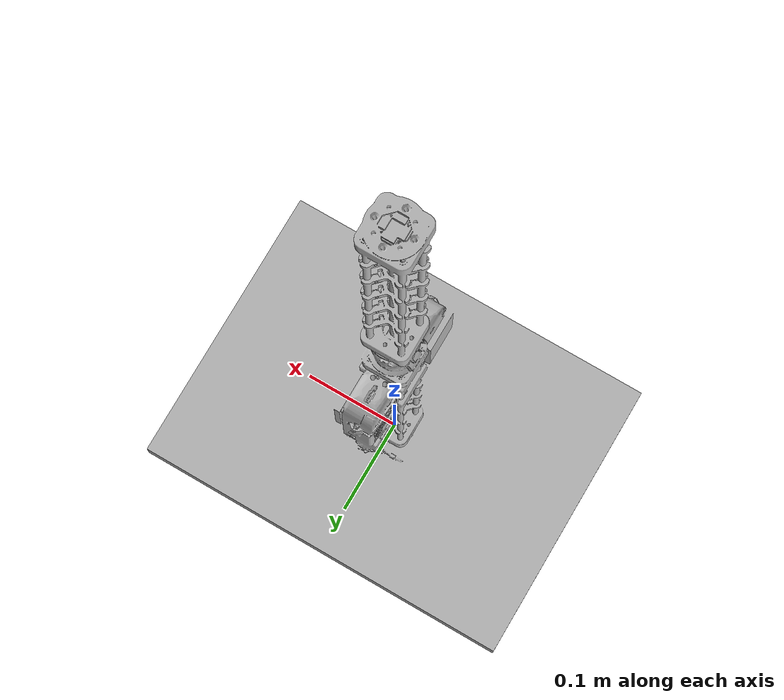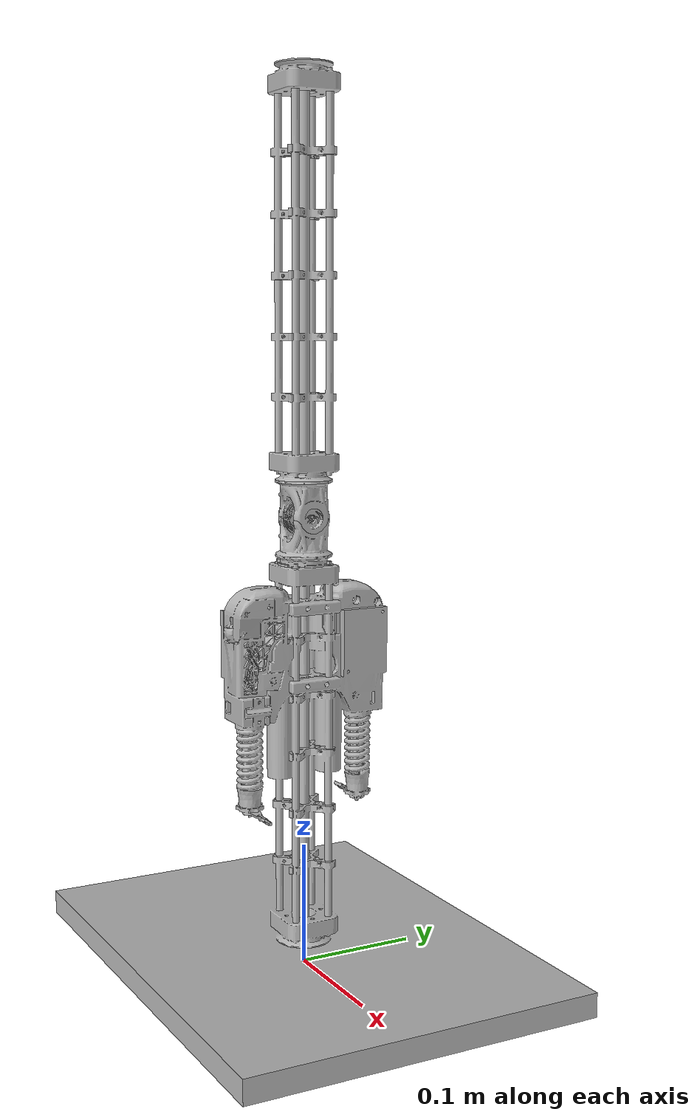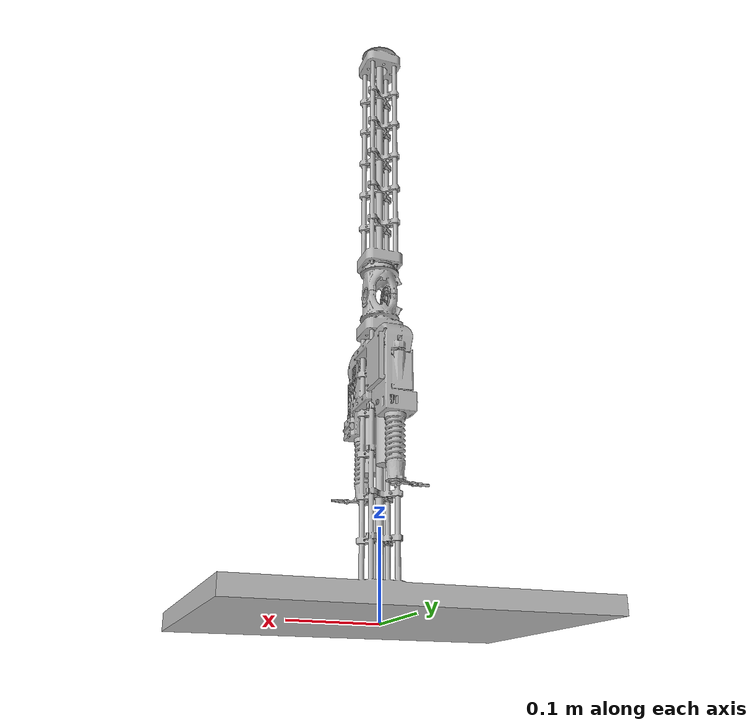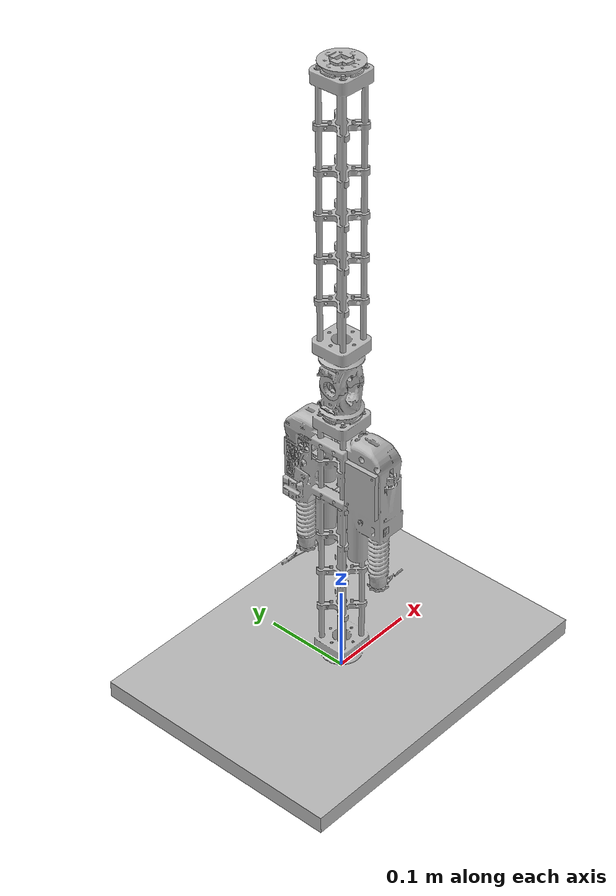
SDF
<sdf version="1.6">
	<model name="myoarm_small_simplified">
		<self_collide>1</self_collide>
		<link name="static_link">
			<pose frame="">0.0 0.0 0.0 1.5707963267948966 -0.0 0.0</pose>
			<inertial>
				<pose frame="">0.0001131354427155749 0.04538460749026542 -1.500388376110969e-05 0 0 0</pose>
				<mass>22.287427485437306</mass>
				<inertia>
					<ixx>0.3587508996548991</ixx>
					<ixy>-0.0006165614742970186</ixy>
					<ixz>8.156253386987656e-05</ixz>
					<iyy>0.39743693844524036</iyy>
					<iyz>0.00019432462885518817</iyz>
					<izz>0.464460009230258</izz>
				</inertia>
			</inertial>
			<collision name="static_link_collision">
				<geometry>
					<mesh>
						<uri>model://myoarm_small_simplified/meshes/collision/COL_static_link.dae</uri>
						<scale>0.001 0.001 0.001</scale>
					</mesh>
				</geometry>
			</collision>
			<visual name="static_link_visual">
				<geometry>
					<mesh>
						<uri>model://myoarm_small_simplified/meshes/visual/VIS_static_link.dae</uri>
						<scale>0.001 0.001 0.001</scale>
					</mesh>
				</geometry>
			</visual>
		</link>
		<link name="moving_link">
			<pose frame="">0.0 0.0 0.0 1.5707963267948966 -0.0 0.0</pose>
			<inertial>
				<pose frame="">-2.182096160333867e-05 0.5531020318685964 -1.5930014569144107e-05 0 0 0</pose>
				<mass>0.4297385541373958</mass>
				<inertia>
					<ixx>0.13873853376190265</ixx>
					<ixy>5.187240982798265e-06</ixy>
					<ixz>3.870329187521234e-06</ixz>
					<iyy>0.00010615273423563294</iyy>
					<iyz>-3.9843991705225996e-08</iyz>
					<izz>0.1387416296363018</izz>
				</inertia>
			</inertial>
			<collision name="moving_link_collision">
				<geometry>
					<mesh>
						<uri>model://myoarm_small_simplified/meshes/collision/COL_moving_link.dae</uri>
						<scale>0.001 0.001 0.001</scale>
					</mesh>
				</geometry>
			</collision>
			<visual name="moving_link_visual">
				<geometry>
					<mesh>
						<uri>model://myoarm_small_simplified/meshes/visual/VIS_moving_link.dae</uri>
						<scale>0.001 0.001 0.001</scale>
					</mesh>
				</geometry>
			</visual>
		</link>
		<link name="cylinder">
			<self_collide>0</self_collide>
			<pose frame="static_link">-0.007 0.0 0.375 1.5707963267948966 -0.0 1.5707963267948966</pose>
			<collision name="cylinder">
				<geometry>
					<mesh>
						<uri>model://myoarm_small_simplified/meshes/collision/COL_cylinder.STL</uri>
						<scale>0.0005 0.0005 0.005</scale>
					</mesh>
				</geometry>
			</collision>

		</link>
		<joint name="cylinder" type="revolute">
			<parent>static_link</parent>
			<child>cylinder</child>
			<pose frame="static_link"> 0.0 0.375 0.0 0 0 0 </pose>
			<axis>
				<xyz>1.0 0.0 0.0</xyz>
				<limit>
					<lower>0.0</lower>
					<upper>0.0</upper>
				</limit>
				<use_parent_model_frame>1</use_parent_model_frame>
			</axis>

		</joint>

		<joint name="elbow" type="revolute">
			<parent>static_link</parent>
			<child>moving_link</child>

			<pose frame="static_link"> 0.0 0.375 0.0 0 0 0 </pose>
			<axis>
				<xyz>1.0 0.0 0.0</xyz>
				<limit>
					<lower>-1.0471975511965976</lower>
					<upper>1.0471975511965976</upper>
				</limit>
				<use_parent_model_frame>1</use_parent_model_frame>
			</axis>
		</joint>

		<plugin filename="libWalkController.so" name="walkController">
	     		<myoMuscle name="motor0">
	      			<link name="static_link">
	       				<viaPoint type="FIXPOINT">0.002315 0.317291 -0.032632</viaPoint>
	      			</link>
				<link name="cylinder">
           				 <viaPoint type="CYLINDRICAL" radius="0.015" state="1" revCounter="0">0 0 0</viaPoint>
        			</link>
	      			<link name="moving_link">
					<viaPoint type="FIXPOINT">0.008450 0.389707 -0.013005</viaPoint>
	      			</link>
			</myoMuscle>
			<myoMuscle name="motor1">
	      			<link name="static_link">
	       				<viaPoint type="FIXPOINT">0.000129 0.318749 0.031225</viaPoint>
	      			</link>
				<link name="cylinder">
           				 <viaPoint type="CYLINDRICAL" radius="0.015" state="1" revCounter="0">0 0 0</viaPoint>
        			</link>
	      			<link name="moving_link">
					<viaPoint type="FIXPOINT">-0.007569 0.389273 0.012184</viaPoint>
	      			</link>
			</myoMuscle>
	    	</plugin>

	</model>

</sdf>
